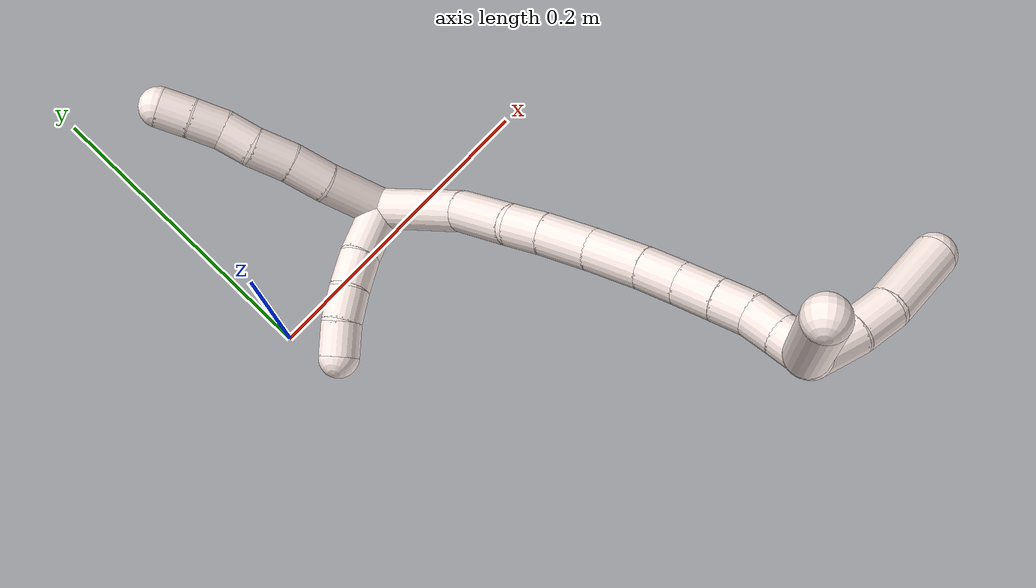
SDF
<sdf version="1.7">
 <world name="default">
  <model name="11">
   <static>0</static>
   <link name="11">
    <collision name="collision-cylinder-e_1_2_8">
     <pose>-0.012832 0.015035 -0.001807 -1.69042 -0.702957 0.784048</pose>
     <geometry><cylinder><radius>0.0125</radius><length>0.039697</length></cylinder></geometry>
     <surface>
      <friction><ode><mu>1.16</mu><mu2>1.16</mu2><slip1>0</slip1><slip2>0</slip2></ode></friction>
      <contact><ode><kp>1e+06</kp><kd>1</kd><max_vel>0</max_vel><min_depth>0.001</min_depth></ode></contact>
     </surface>
    </collision>
    <visual name="visual-cylinder-e_1_2_8">
     <pose>-0.012832 0.015035 -0.001807 -1.69042 -0.702957 0.784048</pose>
     <geometry><cylinder><radius>0.0125</radius><length>0.039697</length></cylinder></geometry>
     <material><ambient>1 0.933333 0.909804 1</ambient></material>
    </visual>
    <collision name="collision-cylinder-e_2_8_9">
     <pose>-0.033209 0.040159 -0.003084 -1.51824 -0.641499 0.610696</pose>
     <geometry><cylinder><radius>0.0125</radius><length>0.025219</length></cylinder></geometry>
     <surface>
      <friction><ode><mu>1.16</mu><mu2>1.16</mu2><slip1>0</slip1><slip2>0</slip2></ode></friction>
      <contact><ode><kp>1e+06</kp><kd>1</kd><max_vel>0</max_vel><min_depth>0.001</min_depth></ode></contact>
     </surface>
    </collision>
    <visual name="visual-cylinder-e_2_8_9">
     <pose>-0.033209 0.040159 -0.003084 -1.51824 -0.641499 0.610696</pose>
     <geometry><cylinder><radius>0.0125</radius><length>0.025219</length></cylinder></geometry>
     <material><ambient>1 0.933333 0.909804 1</ambient></material>
    </visual>
    <collision name="collision-cylinder-e_3_9_10">
     <pose>-0.047345 0.06071 -0.002858 -1.59996 -0.561989 0.577723</pose>
     <geometry><cylinder><radius>0.0125</radius><length>0.024738</length></cylinder></geometry>
     <surface>
      <friction><ode><mu>1.16</mu><mu2>1.16</mu2><slip1>0</slip1><slip2>0</slip2></ode></friction>
      <contact><ode><kp>1e+06</kp><kd>1</kd><max_vel>0</max_vel><min_depth>0.001</min_depth></ode></contact>
     </surface>
    </collision>
    <visual name="visual-cylinder-e_3_9_10">
     <pose>-0.047345 0.06071 -0.002858 -1.59996 -0.561989 0.577723</pose>
     <geometry><cylinder><radius>0.0125</radius><length>0.024738</length></cylinder></geometry>
     <material><ambient>1 0.933333 0.909804 1</ambient></material>
    </visual>
    <collision name="collision-cylinder-e_4_10_11">
     <pose>-0.058693 0.079893 -0.001532 -1.38589 -0.492124 0.411168</pose>
     <geometry><cylinder><radius>0.0125</radius><length>0.020134</length></cylinder></geometry>
     <surface>
      <friction><ode><mu>1.16</mu><mu2>1.16</mu2><slip1>0</slip1><slip2>0</slip2></ode></friction>
      <contact><ode><kp>1e+06</kp><kd>1</kd><max_vel>0</max_vel><min_depth>0.001</min_depth></ode></contact>
     </surface>
    </collision>
    <visual name="visual-cylinder-e_4_10_11">
     <pose>-0.058693 0.079893 -0.001532 -1.38589 -0.492124 0.411168</pose>
     <geometry><cylinder><radius>0.0125</radius><length>0.020134</length></cylinder></geometry>
     <material><ambient>1 0.933333 0.909804 1</ambient></material>
    </visual>
    <collision name="collision-cylinder-e_5_11_12">
     <pose>-0.068124 0.097561 -0.000158 -1.59956 -0.481301 0.494788</pose>
     <geometry><cylinder><radius>0.0125</radius><length>0.020196</length></cylinder></geometry>
     <surface>
      <friction><ode><mu>1.16</mu><mu2>1.16</mu2><slip1>0</slip1><slip2>0</slip2></ode></friction>
      <contact><ode><kp>1e+06</kp><kd>1</kd><max_vel>0</max_vel><min_depth>0.001</min_depth></ode></contact>
     </surface>
    </collision>
    <visual name="visual-cylinder-e_5_11_12">
     <pose>-0.068124 0.097561 -0.000158 -1.59956 -0.481301 0.494788</pose>
     <geometry><cylinder><radius>0.0125</radius><length>0.020196</length></cylinder></geometry>
     <material><ambient>1 0.933333 0.909804 1</ambient></material>
    </visual>
    <collision name="collision-cylinder-e_6_12_6">
     <pose>-0.076703 0.115723 -0.00033 -1.56154 -0.400708 0.397111</pose>
     <geometry><cylinder><radius>0.0125</radius><length>0.020016</length></cylinder></geometry>
     <surface>
      <friction><ode><mu>1.16</mu><mu2>1.16</mu2><slip1>0</slip1><slip2>0</slip2></ode></friction>
      <contact><ode><kp>1e+06</kp><kd>1</kd><max_vel>0</max_vel><min_depth>0.001</min_depth></ode></contact>
     </surface>
    </collision>
    <visual name="visual-cylinder-e_6_12_6">
     <pose>-0.076703 0.115723 -0.00033 -1.56154 -0.400708 0.397111</pose>
     <geometry><cylinder><radius>0.0125</radius><length>0.020016</length></cylinder></geometry>
     <material><ambient>1 0.933333 0.909804 1</ambient></material>
    </visual>
    <collision name="collision-cylinder-e_1_2_13">
     <pose>0.002186 0.003134 -0.017584 -2.96522 0.121766 -1.20724</pose>
     <geometry><cylinder><radius>0.0125</radius><length>0.035988</length></cylinder></geometry>
     <surface>
      <friction><ode><mu>1.16</mu><mu2>1.16</mu2><slip1>0</slip1><slip2>0</slip2></ode></friction>
      <contact><ode><kp>1e+06</kp><kd>1</kd><max_vel>0</max_vel><min_depth>0.001</min_depth></ode></contact>
     </surface>
    </collision>
    <visual name="visual-cylinder-e_1_2_13">
     <pose>0.002186 0.003134 -0.017584 -2.96522 0.121766 -1.20724</pose>
     <geometry><cylinder><radius>0.0125</radius><length>0.035988</length></cylinder></geometry>
     <material><ambient>1 0.933333 0.909804 1</ambient></material>
    </visual>
    <collision name="collision-cylinder-e_2_13_14">
     <pose>0.006891 0.007346 -0.045924 -3.04168 0.228981 -2.3213</pose>
     <geometry><cylinder><radius>0.0125</radius><length>0.0222</length></cylinder></geometry>
     <surface>
      <friction><ode><mu>1.16</mu><mu2>1.16</mu2><slip1>0</slip1><slip2>0</slip2></ode></friction>
      <contact><ode><kp>1e+06</kp><kd>1</kd><max_vel>0</max_vel><min_depth>0.001</min_depth></ode></contact>
     </surface>
    </collision>
    <visual name="visual-cylinder-e_2_13_14">
     <pose>0.006891 0.007346 -0.045924 -3.04168 0.228981 -2.3213</pose>
     <geometry><cylinder><radius>0.0125</radius><length>0.0222</length></cylinder></geometry>
     <material><ambient>1 0.933333 0.909804 1</ambient></material>
    </visual>
    <collision name="collision-cylinder-e_3_14_15">
     <pose>0.013354 0.009196 -0.066172 -3.06042 0.392601 -2.73874</pose>
     <geometry><cylinder><radius>0.0125</radius><length>0.020616</length></cylinder></geometry>
     <surface>
      <friction><ode><mu>1.16</mu><mu2>1.16</mu2><slip1>0</slip1><slip2>0</slip2></ode></friction>
      <contact><ode><kp>1e+06</kp><kd>1</kd><max_vel>0</max_vel><min_depth>0.001</min_depth></ode></contact>
     </surface>
    </collision>
    <visual name="visual-cylinder-e_3_14_15">
     <pose>0.013354 0.009196 -0.066172 -3.06042 0.392601 -2.73874</pose>
     <geometry><cylinder><radius>0.0125</radius><length>0.020616</length></cylinder></geometry>
     <material><ambient>1 0.933333 0.909804 1</ambient></material>
    </visual>
    <collision name="collision-cylinder-e_4_15_5">
     <pose>0.022733 0.009558 -0.084754 3.09651 0.538449 2.97854</pose>
     <geometry><cylinder><radius>0.0125</radius><length>0.021197</length></cylinder></geometry>
     <surface>
      <friction><ode><mu>1.16</mu><mu2>1.16</mu2><slip1>0</slip1><slip2>0</slip2></ode></friction>
      <contact><ode><kp>1e+06</kp><kd>1</kd><max_vel>0</max_vel><min_depth>0.001</min_depth></ode></contact>
     </surface>
    </collision>
    <visual name="visual-cylinder-e_4_15_5">
     <pose>0.022733 0.009558 -0.084754 3.09651 0.538449 2.97854</pose>
     <geometry><cylinder><radius>0.0125</radius><length>0.021197</length></cylinder></geometry>
     <material><ambient>1 0.933333 0.909804 1</ambient></material>
    </visual>
    <collision name="collision-cylinder-e_1_2_16">
     <pose>-0.011816 -0.028657 -0.007797 1.83646 -0.378649 -0.49132</pose>
     <geometry><cylinder><radius>0.0125</radius><length>0.063927</length></cylinder></geometry>
     <surface>
      <friction><ode><mu>1.16</mu><mu2>1.16</mu2><slip1>0</slip1><slip2>0</slip2></ode></friction>
      <contact><ode><kp>1e+06</kp><kd>1</kd><max_vel>0</max_vel><min_depth>0.001</min_depth></ode></contact>
     </surface>
    </collision>
    <visual name="visual-cylinder-e_1_2_16">
     <pose>-0.011816 -0.028657 -0.007797 1.83646 -0.378649 -0.49132</pose>
     <geometry><cylinder><radius>0.0125</radius><length>0.063927</length></cylinder></geometry>
     <material><ambient>1 0.933333 0.909804 1</ambient></material>
    </visual>
    <collision name="collision-cylinder-e_2_16_17">
     <pose>-0.030997 -0.074342 -0.024914 2.07159 -0.362655 -0.600033</pose>
     <geometry><cylinder><radius>0.0125</radius><length>0.041522</length></cylinder></geometry>
     <surface>
      <friction><ode><mu>1.16</mu><mu2>1.16</mu2><slip1>0</slip1><slip2>0</slip2></ode></friction>
      <contact><ode><kp>1e+06</kp><kd>1</kd><max_vel>0</max_vel><min_depth>0.001</min_depth></ode></contact>
     </surface>
    </collision>
    <visual name="visual-cylinder-e_2_16_17">
     <pose>-0.030997 -0.074342 -0.024914 2.07159 -0.362655 -0.600033</pose>
     <geometry><cylinder><radius>0.0125</radius><length>0.041522</length></cylinder></geometry>
     <material><ambient>1 0.933333 0.909804 1</ambient></material>
    </visual>
    <collision name="collision-cylinder-e_3_17_18">
     <pose>-0.039783 -0.10202 -0.037636 1.87996 -0.126409 -0.172875</pose>
     <geometry><cylinder><radius>0.0125</radius><length>0.022542</length></cylinder></geometry>
     <surface>
      <friction><ode><mu>1.16</mu><mu2>1.16</mu2><slip1>0</slip1><slip2>0</slip2></ode></friction>
      <contact><ode><kp>1e+06</kp><kd>1</kd><max_vel>0</max_vel><min_depth>0.001</min_depth></ode></contact>
     </surface>
    </collision>
    <visual name="visual-cylinder-e_3_17_18">
     <pose>-0.039783 -0.10202 -0.037636 1.87996 -0.126409 -0.172875</pose>
     <geometry><cylinder><radius>0.0125</radius><length>0.022542</length></cylinder></geometry>
     <material><ambient>1 0.933333 0.909804 1</ambient></material>
    </visual>
    <collision name="collision-cylinder-e_4_18_19">
     <pose>-0.042778 -0.12717 -0.046254 1.91614 -0.101842 -0.144742</pose>
     <geometry><cylinder><radius>0.0125</radius><length>0.030978</length></cylinder></geometry>
     <surface>
      <friction><ode><mu>1.16</mu><mu2>1.16</mu2><slip1>0</slip1><slip2>0</slip2></ode></friction>
      <contact><ode><kp>1e+06</kp><kd>1</kd><max_vel>0</max_vel><min_depth>0.001</min_depth></ode></contact>
     </surface>
    </collision>
    <visual name="visual-cylinder-e_4_18_19">
     <pose>-0.042778 -0.12717 -0.046254 1.91614 -0.101842 -0.144742</pose>
     <geometry><cylinder><radius>0.0125</radius><length>0.030978</length></cylinder></geometry>
     <material><ambient>1 0.933333 0.909804 1</ambient></material>
    </visual>
    <collision name="collision-cylinder-e_5_19_20">
     <pose>-0.046457 -0.157116 -0.057946 1.96778 -0.12496 -0.187579</pose>
     <geometry><cylinder><radius>0.0125</radius><length>0.033763</length></cylinder></geometry>
     <surface>
      <friction><ode><mu>1.16</mu><mu2>1.16</mu2><slip1>0</slip1><slip2>0</slip2></ode></friction>
      <contact><ode><kp>1e+06</kp><kd>1</kd><max_vel>0</max_vel><min_depth>0.001</min_depth></ode></contact>
     </surface>
    </collision>
    <visual name="visual-cylinder-e_5_19_20">
     <pose>-0.046457 -0.157116 -0.057946 1.96778 -0.12496 -0.187579</pose>
     <geometry><cylinder><radius>0.0125</radius><length>0.033763</length></cylinder></geometry>
     <material><ambient>1 0.933333 0.909804 1</ambient></material>
    </visual>
    <collision name="collision-cylinder-e_6_20_21">
     <pose>-0.049659 -0.183236 -0.069339 2.00252 -0.093129 -0.145292</pose>
     <geometry><cylinder><radius>0.0125</radius><length>0.023603</length></cylinder></geometry>
     <surface>
      <friction><ode><mu>1.16</mu><mu2>1.16</mu2><slip1>0</slip1><slip2>0</slip2></ode></friction>
      <contact><ode><kp>1e+06</kp><kd>1</kd><max_vel>0</max_vel><min_depth>0.001</min_depth></ode></contact>
     </surface>
    </collision>
    <visual name="visual-cylinder-e_6_20_21">
     <pose>-0.049659 -0.183236 -0.069339 2.00252 -0.093129 -0.145292</pose>
     <geometry><cylinder><radius>0.0125</radius><length>0.023603</length></cylinder></geometry>
     <material><ambient>1 0.933333 0.909804 1</ambient></material>
    </visual>
    <collision name="collision-cylinder-e_7_21_22">
     <pose>-0.051887 -0.204363 -0.079286 2.01921 -0.097153 -0.154367</pose>
     <geometry><cylinder><radius>0.0125</radius><length>0.023313</length></cylinder></geometry>
     <surface>
      <friction><ode><mu>1.16</mu><mu2>1.16</mu2><slip1>0</slip1><slip2>0</slip2></ode></friction>
      <contact><ode><kp>1e+06</kp><kd>1</kd><max_vel>0</max_vel><min_depth>0.001</min_depth></ode></contact>
     </surface>
    </collision>
    <visual name="visual-cylinder-e_7_21_22">
     <pose>-0.051887 -0.204363 -0.079286 2.01921 -0.097153 -0.154367</pose>
     <geometry><cylinder><radius>0.0125</radius><length>0.023313</length></cylinder></geometry>
     <material><ambient>1 0.933333 0.909804 1</ambient></material>
    </visual>
    <collision name="collision-cylinder-e_8_22_23">
     <pose>-0.053729 -0.223937 -0.088554 2.00584 -0.070625 -0.110634</pose>
     <geometry><cylinder><radius>0.0125</radius><length>0.020163</length></cylinder></geometry>
     <surface>
      <friction><ode><mu>1.16</mu><mu2>1.16</mu2><slip1>0</slip1><slip2>0</slip2></ode></friction>
      <contact><ode><kp>1e+06</kp><kd>1</kd><max_vel>0</max_vel><min_depth>0.001</min_depth></ode></contact>
     </surface>
    </collision>
    <visual name="visual-cylinder-e_8_22_23">
     <pose>-0.053729 -0.223937 -0.088554 2.00584 -0.070625 -0.110634</pose>
     <geometry><cylinder><radius>0.0125</radius><length>0.020163</length></cylinder></geometry>
     <material><ambient>1 0.933333 0.909804 1</ambient></material>
    </visual>
    <collision name="collision-cylinder-e_9_23_24">
     <pose>-0.055125 -0.240992 -0.098895 2.22644 -0.068241 -0.138412</pose>
     <geometry><cylinder><radius>0.0125</radius><length>0.020069</length></cylinder></geometry>
     <surface>
      <friction><ode><mu>1.16</mu><mu2>1.16</mu2><slip1>0</slip1><slip2>0</slip2></ode></friction>
      <contact><ode><kp>1e+06</kp><kd>1</kd><max_vel>0</max_vel><min_depth>0.001</min_depth></ode></contact>
     </surface>
    </collision>
    <visual name="visual-cylinder-e_9_23_24">
     <pose>-0.055125 -0.240992 -0.098895 2.22644 -0.068241 -0.138412</pose>
     <geometry><cylinder><radius>0.0125</radius><length>0.020069</length></cylinder></geometry>
     <material><ambient>1 0.933333 0.909804 1</ambient></material>
    </visual>
    <collision name="collision-cylinder-e_10_24_1">
     <pose>-0.056665 -0.256737 -0.111282 2.24828 -0.085239 -0.177616</pose>
     <geometry><cylinder><radius>0.0125</radius><length>0.020119</length></cylinder></geometry>
     <surface>
      <friction><ode><mu>1.16</mu><mu2>1.16</mu2><slip1>0</slip1><slip2>0</slip2></ode></friction>
      <contact><ode><kp>1e+06</kp><kd>1</kd><max_vel>0</max_vel><min_depth>0.001</min_depth></ode></contact>
     </surface>
    </collision>
    <visual name="visual-cylinder-e_10_24_1">
     <pose>-0.056665 -0.256737 -0.111282 2.24828 -0.085239 -0.177616</pose>
     <geometry><cylinder><radius>0.0125</radius><length>0.020119</length></cylinder></geometry>
     <material><ambient>1 0.933333 0.909804 1</ambient></material>
    </visual>
    <collision name="collision-cylinder-e_1_1_25">
     <pose>-0.067453 -0.263652 -0.123882 -3.00082 -0.999782 2.88483</pose>
     <geometry><cylinder><radius>0.0125</radius><length>0.023608</length></cylinder></geometry>
     <surface>
      <friction><ode><mu>1.16</mu><mu2>1.16</mu2><slip1>0</slip1><slip2>0</slip2></ode></friction>
      <contact><ode><kp>1e+06</kp><kd>1</kd><max_vel>0</max_vel><min_depth>0.001</min_depth></ode></contact>
     </surface>
    </collision>
    <visual name="visual-cylinder-e_1_1_25">
     <pose>-0.067453 -0.263652 -0.123882 -3.00082 -0.999782 2.88483</pose>
     <geometry><cylinder><radius>0.0125</radius><length>0.023608</length></cylinder></geometry>
     <material><ambient>1 0.933333 0.909804 1</ambient></material>
    </visual>
    <collision name="collision-cylinder-e_2_25_4">
     <pose>-0.11286 -0.265999 -0.143978 2.9105 -1.19112 -2.80233</pose>
     <geometry><cylinder><radius>0.0125</radius><length>0.076392</length></cylinder></geometry>
     <surface>
      <friction><ode><mu>1.16</mu><mu2>1.16</mu2><slip1>0</slip1><slip2>0</slip2></ode></friction>
      <contact><ode><kp>1e+06</kp><kd>1</kd><max_vel>0</max_vel><min_depth>0.001</min_depth></ode></contact>
     </surface>
    </collision>
    <visual name="visual-cylinder-e_2_25_4">
     <pose>-0.11286 -0.265999 -0.143978 2.9105 -1.19112 -2.80233</pose>
     <geometry><cylinder><radius>0.0125</radius><length>0.076392</length></cylinder></geometry>
     <material><ambient>1 0.933333 0.909804 1</ambient></material>
    </visual>
    <collision name="collision-cylinder-e_1_1_26">
     <pose>-0.05698 -0.275371 -0.10829 0.862335 0.038002 0.017484</pose>
     <geometry><cylinder><radius>0.0125</radius><length>0.02853</length></cylinder></geometry>
     <surface>
      <friction><ode><mu>1.16</mu><mu2>1.16</mu2><slip1>0</slip1><slip2>0</slip2></ode></friction>
      <contact><ode><kp>1e+06</kp><kd>1</kd><max_vel>0</max_vel><min_depth>0.001</min_depth></ode></contact>
     </surface>
    </collision>
    <visual name="visual-cylinder-e_1_1_26">
     <pose>-0.05698 -0.275371 -0.10829 0.862335 0.038002 0.017484</pose>
     <geometry><cylinder><radius>0.0125</radius><length>0.02853</length></cylinder></geometry>
     <material><ambient>1 0.933333 0.909804 1</ambient></material>
    </visual>
    <collision name="collision-cylinder-e_2_26_27">
     <pose>-0.055985 -0.293992 -0.090119 0.719626 0.038258 0.014394</pose>
     <geometry><cylinder><radius>0.0125</radius><length>0.023675</length></cylinder></geometry>
     <surface>
      <friction><ode><mu>1.16</mu><mu2>1.16</mu2><slip1>0</slip1><slip2>0</slip2></ode></friction>
      <contact><ode><kp>1e+06</kp><kd>1</kd><max_vel>0</max_vel><min_depth>0.001</min_depth></ode></contact>
     </surface>
    </collision>
    <visual name="visual-cylinder-e_2_26_27">
     <pose>-0.055985 -0.293992 -0.090119 0.719626 0.038258 0.014394</pose>
     <geometry><cylinder><radius>0.0125</radius><length>0.023675</length></cylinder></geometry>
     <material><ambient>1 0.933333 0.909804 1</ambient></material>
    </visual>
    <collision name="collision-cylinder-e_3_27_3">
     <pose>-0.052601 -0.313249 -0.060459 0.504344 0.122959 0.031719</pose>
     <geometry><cylinder><radius>0.0125</radius><length>0.047795</length></cylinder></geometry>
     <surface>
      <friction><ode><mu>1.16</mu><mu2>1.16</mu2><slip1>0</slip1><slip2>0</slip2></ode></friction>
      <contact><ode><kp>1e+06</kp><kd>1</kd><max_vel>0</max_vel><min_depth>0.001</min_depth></ode></contact>
     </surface>
    </collision>
    <visual name="visual-cylinder-e_3_27_3">
     <pose>-0.052601 -0.313249 -0.060459 0.504344 0.122959 0.031719</pose>
     <geometry><cylinder><radius>0.0125</radius><length>0.047795</length></cylinder></geometry>
     <material><ambient>1 0.933333 0.909804 1</ambient></material>
    </visual>
    <collision name="collision-sphere-3">
     <pose>-0.04967 -0.32471 -0.039695 0 -0 0</pose>
     <geometry><sphere><radius>0.0125</radius></sphere></geometry>
     <surface>
      <friction><ode><mu>1.16</mu><mu2>1.16</mu2><slip1>0</slip1><slip2>0</slip2></ode></friction>
      <contact><ode><kp>1e+06</kp><kd>1</kd><max_vel>0</max_vel><min_depth>0.001</min_depth></ode></contact>
     </surface>
    </collision>
    <visual name="visual-sphere-3">
     <pose>-0.04967 -0.32471 -0.039695 0 -0 0</pose>
     <geometry><sphere><radius>0.0125</radius></sphere></geometry>
     <material><ambient>1 0.933333 0.909804 1</ambient></material>
    </visual>
    <collision name="collision-sphere-27">
     <pose>-0.055532 -0.301789 -0.081223 0 -0 0</pose>
     <geometry><sphere><radius>0.0125</radius></sphere></geometry>
     <surface>
      <friction><ode><mu>1.16</mu><mu2>1.16</mu2><slip1>0</slip1><slip2>0</slip2></ode></friction>
      <contact><ode><kp>1e+06</kp><kd>1</kd><max_vel>0</max_vel><min_depth>0.001</min_depth></ode></contact>
     </surface>
    </collision>
    <visual name="visual-sphere-27">
     <pose>-0.055532 -0.301789 -0.081223 0 -0 0</pose>
     <geometry><sphere><radius>0.0125</radius></sphere></geometry>
     <material><ambient>1 0.933333 0.909804 1</ambient></material>
    </visual>
    <collision name="collision-sphere-26">
     <pose>-0.056438 -0.286195 -0.099015 0 -0 0</pose>
     <geometry><sphere><radius>0.0125</radius></sphere></geometry>
     <surface>
      <friction><ode><mu>1.16</mu><mu2>1.16</mu2><slip1>0</slip1><slip2>0</slip2></ode></friction>
      <contact><ode><kp>1e+06</kp><kd>1</kd><max_vel>0</max_vel><min_depth>0.001</min_depth></ode></contact>
     </surface>
    </collision>
    <visual name="visual-sphere-26">
     <pose>-0.056438 -0.286195 -0.099015 0 -0 0</pose>
     <geometry><sphere><radius>0.0125</radius></sphere></geometry>
     <material><ambient>1 0.933333 0.909804 1</ambient></material>
    </visual>
    <collision name="collision-sphere-4">
     <pose>-0.148336 -0.269241 -0.157758 0 -0 0</pose>
     <geometry><sphere><radius>0.0125</radius></sphere></geometry>
     <surface>
      <friction><ode><mu>1.16</mu><mu2>1.16</mu2><slip1>0</slip1><slip2>0</slip2></ode></friction>
      <contact><ode><kp>1e+06</kp><kd>1</kd><max_vel>0</max_vel><min_depth>0.001</min_depth></ode></contact>
     </surface>
    </collision>
    <visual name="visual-sphere-4">
     <pose>-0.148336 -0.269241 -0.157758 0 -0 0</pose>
     <geometry><sphere><radius>0.0125</radius></sphere></geometry>
     <material><ambient>1 0.933333 0.909804 1</ambient></material>
    </visual>
    <collision name="collision-sphere-25">
     <pose>-0.077384 -0.262757 -0.130198 0 -0 0</pose>
     <geometry><sphere><radius>0.0125</radius></sphere></geometry>
     <surface>
      <friction><ode><mu>1.16</mu><mu2>1.16</mu2><slip1>0</slip1><slip2>0</slip2></ode></friction>
      <contact><ode><kp>1e+06</kp><kd>1</kd><max_vel>0</max_vel><min_depth>0.001</min_depth></ode></contact>
     </surface>
    </collision>
    <visual name="visual-sphere-25">
     <pose>-0.077384 -0.262757 -0.130198 0 -0 0</pose>
     <geometry><sphere><radius>0.0125</radius></sphere></geometry>
     <material><ambient>1 0.933333 0.909804 1</ambient></material>
    </visual>
    <collision name="collision-sphere-1">
     <pose>-0.057522 -0.264547 -0.117565 0 -0 0</pose>
     <geometry><sphere><radius>0.0125</radius></sphere></geometry>
     <surface>
      <friction><ode><mu>1.16</mu><mu2>1.16</mu2><slip1>0</slip1><slip2>0</slip2></ode></friction>
      <contact><ode><kp>1e+06</kp><kd>1</kd><max_vel>0</max_vel><min_depth>0.001</min_depth></ode></contact>
     </surface>
    </collision>
    <visual name="visual-sphere-1">
     <pose>-0.057522 -0.264547 -0.117565 0 -0 0</pose>
     <geometry><sphere><radius>0.0125</radius></sphere></geometry>
     <material><ambient>1 0.933333 0.909804 1</ambient></material>
    </visual>
    <collision name="collision-sphere-24">
     <pose>-0.055809 -0.248928 -0.104999 0 -0 0</pose>
     <geometry><sphere><radius>0.0125</radius></sphere></geometry>
     <surface>
      <friction><ode><mu>1.16</mu><mu2>1.16</mu2><slip1>0</slip1><slip2>0</slip2></ode></friction>
      <contact><ode><kp>1e+06</kp><kd>1</kd><max_vel>0</max_vel><min_depth>0.001</min_depth></ode></contact>
     </surface>
    </collision>
    <visual name="visual-sphere-24">
     <pose>-0.055809 -0.248928 -0.104999 0 -0 0</pose>
     <geometry><sphere><radius>0.0125</radius></sphere></geometry>
     <material><ambient>1 0.933333 0.909804 1</ambient></material>
    </visual>
    <collision name="collision-sphere-23">
     <pose>-0.05444 -0.233057 -0.092792 0 -0 0</pose>
     <geometry><sphere><radius>0.0125</radius></sphere></geometry>
     <surface>
      <friction><ode><mu>1.16</mu><mu2>1.16</mu2><slip1>0</slip1><slip2>0</slip2></ode></friction>
      <contact><ode><kp>1e+06</kp><kd>1</kd><max_vel>0</max_vel><min_depth>0.001</min_depth></ode></contact>
     </surface>
    </collision>
    <visual name="visual-sphere-23">
     <pose>-0.05444 -0.233057 -0.092792 0 -0 0</pose>
     <geometry><sphere><radius>0.0125</radius></sphere></geometry>
     <material><ambient>1 0.933333 0.909804 1</ambient></material>
    </visual>
    <collision name="collision-sphere-22">
     <pose>-0.053018 -0.214817 -0.084315 0 -0 0</pose>
     <geometry><sphere><radius>0.0125</radius></sphere></geometry>
     <surface>
      <friction><ode><mu>1.16</mu><mu2>1.16</mu2><slip1>0</slip1><slip2>0</slip2></ode></friction>
      <contact><ode><kp>1e+06</kp><kd>1</kd><max_vel>0</max_vel><min_depth>0.001</min_depth></ode></contact>
     </surface>
    </collision>
    <visual name="visual-sphere-22">
     <pose>-0.053018 -0.214817 -0.084315 0 -0 0</pose>
     <geometry><sphere><radius>0.0125</radius></sphere></geometry>
     <material><ambient>1 0.933333 0.909804 1</ambient></material>
    </visual>
    <collision name="collision-sphere-21">
     <pose>-0.050756 -0.193908 -0.074256 0 -0 0</pose>
     <geometry><sphere><radius>0.0125</radius></sphere></geometry>
     <surface>
      <friction><ode><mu>1.16</mu><mu2>1.16</mu2><slip1>0</slip1><slip2>0</slip2></ode></friction>
      <contact><ode><kp>1e+06</kp><kd>1</kd><max_vel>0</max_vel><min_depth>0.001</min_depth></ode></contact>
     </surface>
    </collision>
    <visual name="visual-sphere-21">
     <pose>-0.050756 -0.193908 -0.074256 0 -0 0</pose>
     <geometry><sphere><radius>0.0125</radius></sphere></geometry>
     <material><ambient>1 0.933333 0.909804 1</ambient></material>
    </visual>
    <collision name="collision-sphere-12">
     <pose>-0.072799 0.106508 -0.000416 0 -0 0</pose>
     <geometry><sphere><radius>0.0125</radius></sphere></geometry>
     <surface>
      <friction><ode><mu>1.16</mu><mu2>1.16</mu2><slip1>0</slip1><slip2>0</slip2></ode></friction>
      <contact><ode><kp>1e+06</kp><kd>1</kd><max_vel>0</max_vel><min_depth>0.001</min_depth></ode></contact>
     </surface>
    </collision>
    <visual name="visual-sphere-12">
     <pose>-0.072799 0.106508 -0.000416 0 -0 0</pose>
     <geometry><sphere><radius>0.0125</radius></sphere></geometry>
     <material><ambient>1 0.933333 0.909804 1</ambient></material>
    </visual>
    <collision name="collision-sphere-11">
     <pose>-0.06345 0.088614 9.9e-05 0 -0 0</pose>
     <geometry><sphere><radius>0.0125</radius></sphere></geometry>
     <surface>
      <friction><ode><mu>1.16</mu><mu2>1.16</mu2><slip1>0</slip1><slip2>0</slip2></ode></friction>
      <contact><ode><kp>1e+06</kp><kd>1</kd><max_vel>0</max_vel><min_depth>0.001</min_depth></ode></contact>
     </surface>
    </collision>
    <visual name="visual-sphere-11">
     <pose>-0.06345 0.088614 9.9e-05 0 -0 0</pose>
     <geometry><sphere><radius>0.0125</radius></sphere></geometry>
     <material><ambient>1 0.933333 0.909804 1</ambient></material>
    </visual>
    <collision name="collision-sphere-10">
     <pose>-0.053936 0.071172 -0.003163 0 -0 0</pose>
     <geometry><sphere><radius>0.0125</radius></sphere></geometry>
     <surface>
      <friction><ode><mu>1.16</mu><mu2>1.16</mu2><slip1>0</slip1><slip2>0</slip2></ode></friction>
      <contact><ode><kp>1e+06</kp><kd>1</kd><max_vel>0</max_vel><min_depth>0.001</min_depth></ode></contact>
     </surface>
    </collision>
    <visual name="visual-sphere-10">
     <pose>-0.053936 0.071172 -0.003163 0 -0 0</pose>
     <geometry><sphere><radius>0.0125</radius></sphere></geometry>
     <material><ambient>1 0.933333 0.909804 1</ambient></material>
    </visual>
    <collision name="collision-sphere-9">
     <pose>-0.040754 0.050247 -0.002553 0 -0 0</pose>
     <geometry><sphere><radius>0.0125</radius></sphere></geometry>
     <surface>
      <friction><ode><mu>1.16</mu><mu2>1.16</mu2><slip1>0</slip1><slip2>0</slip2></ode></friction>
      <contact><ode><kp>1e+06</kp><kd>1</kd><max_vel>0</max_vel><min_depth>0.001</min_depth></ode></contact>
     </surface>
    </collision>
    <visual name="visual-sphere-9">
     <pose>-0.040754 0.050247 -0.002553 0 -0 0</pose>
     <geometry><sphere><radius>0.0125</radius></sphere></geometry>
     <material><ambient>1 0.933333 0.909804 1</ambient></material>
    </visual>
    <collision name="collision-sphere-2">
     <geometry><sphere><radius>0.0125</radius></sphere></geometry>
     <surface>
      <friction><ode><mu>1.16</mu><mu2>1.16</mu2><slip1>0</slip1><slip2>0</slip2></ode></friction>
      <contact><ode><kp>1e+06</kp><kd>1</kd><max_vel>0</max_vel><min_depth>0.001</min_depth></ode></contact>
     </surface>
    </collision>
    <visual name="visual-sphere-2">
     <geometry><sphere><radius>0.0125</radius></sphere></geometry>
     <material><ambient>1 0.933333 0.909804 1</ambient></material>
    </visual>
    <collision name="collision-sphere-19">
     <pose>-0.044353 -0.141669 -0.05147 0 -0 0</pose>
     <geometry><sphere><radius>0.0125</radius></sphere></geometry>
     <surface>
      <friction><ode><mu>1.16</mu><mu2>1.16</mu2><slip1>0</slip1><slip2>0</slip2></ode></friction>
      <contact><ode><kp>1e+06</kp><kd>1</kd><max_vel>0</max_vel><min_depth>0.001</min_depth></ode></contact>
     </surface>
    </collision>
    <visual name="visual-sphere-19">
     <pose>-0.044353 -0.141669 -0.05147 0 -0 0</pose>
     <geometry><sphere><radius>0.0125</radius></sphere></geometry>
     <material><ambient>1 0.933333 0.909804 1</ambient></material>
    </visual>
    <collision name="collision-sphere-8">
     <pose>-0.025663 0.03007 -0.003614 0 -0 0</pose>
     <geometry><sphere><radius>0.0125</radius></sphere></geometry>
     <surface>
      <friction><ode><mu>1.16</mu><mu2>1.16</mu2><slip1>0</slip1><slip2>0</slip2></ode></friction>
      <contact><ode><kp>1e+06</kp><kd>1</kd><max_vel>0</max_vel><min_depth>0.001</min_depth></ode></contact>
     </surface>
    </collision>
    <visual name="visual-sphere-8">
     <pose>-0.025663 0.03007 -0.003614 0 -0 0</pose>
     <geometry><sphere><radius>0.0125</radius></sphere></geometry>
     <material><ambient>1 0.933333 0.909804 1</ambient></material>
    </visual>
    <collision name="collision-sphere-6">
     <pose>-0.080607 0.124938 -0.000245 0 -0 0</pose>
     <geometry><sphere><radius>0.0125</radius></sphere></geometry>
     <surface>
      <friction><ode><mu>1.16</mu><mu2>1.16</mu2><slip1>0</slip1><slip2>0</slip2></ode></friction>
      <contact><ode><kp>1e+06</kp><kd>1</kd><max_vel>0</max_vel><min_depth>0.001</min_depth></ode></contact>
     </surface>
    </collision>
    <visual name="visual-sphere-6">
     <pose>-0.080607 0.124938 -0.000245 0 -0 0</pose>
     <geometry><sphere><radius>0.0125</radius></sphere></geometry>
     <material><ambient>1 0.933333 0.909804 1</ambient></material>
    </visual>
    <collision name="collision-sphere-13">
     <pose>0.004371 0.006268 -0.035167 0 -0 0</pose>
     <geometry><sphere><radius>0.0125</radius></sphere></geometry>
     <surface>
      <friction><ode><mu>1.16</mu><mu2>1.16</mu2><slip1>0</slip1><slip2>0</slip2></ode></friction>
      <contact><ode><kp>1e+06</kp><kd>1</kd><max_vel>0</max_vel><min_depth>0.001</min_depth></ode></contact>
     </surface>
    </collision>
    <visual name="visual-sphere-13">
     <pose>0.004371 0.006268 -0.035167 0 -0 0</pose>
     <geometry><sphere><radius>0.0125</radius></sphere></geometry>
     <material><ambient>1 0.933333 0.909804 1</ambient></material>
    </visual>
    <collision name="collision-sphere-14">
     <pose>0.00941 0.008424 -0.05668 0 -0 0</pose>
     <geometry><sphere><radius>0.0125</radius></sphere></geometry>
     <surface>
      <friction><ode><mu>1.16</mu><mu2>1.16</mu2><slip1>0</slip1><slip2>0</slip2></ode></friction>
      <contact><ode><kp>1e+06</kp><kd>1</kd><max_vel>0</max_vel><min_depth>0.001</min_depth></ode></contact>
     </surface>
    </collision>
    <visual name="visual-sphere-14">
     <pose>0.00941 0.008424 -0.05668 0 -0 0</pose>
     <geometry><sphere><radius>0.0125</radius></sphere></geometry>
     <material><ambient>1 0.933333 0.909804 1</ambient></material>
    </visual>
    <collision name="collision-sphere-15">
     <pose>0.017298 0.009968 -0.075664 0 -0 0</pose>
     <geometry><sphere><radius>0.0125</radius></sphere></geometry>
     <surface>
      <friction><ode><mu>1.16</mu><mu2>1.16</mu2><slip1>0</slip1><slip2>0</slip2></ode></friction>
      <contact><ode><kp>1e+06</kp><kd>1</kd><max_vel>0</max_vel><min_depth>0.001</min_depth></ode></contact>
     </surface>
    </collision>
    <visual name="visual-sphere-15">
     <pose>0.017298 0.009968 -0.075664 0 -0 0</pose>
     <geometry><sphere><radius>0.0125</radius></sphere></geometry>
     <material><ambient>1 0.933333 0.909804 1</ambient></material>
    </visual>
    <collision name="collision-sphere-5">
     <pose>0.028167 0.009148 -0.093843 0 -0 0</pose>
     <geometry><sphere><radius>0.0125</radius></sphere></geometry>
     <surface>
      <friction><ode><mu>1.16</mu><mu2>1.16</mu2><slip1>0</slip1><slip2>0</slip2></ode></friction>
      <contact><ode><kp>1e+06</kp><kd>1</kd><max_vel>0</max_vel><min_depth>0.001</min_depth></ode></contact>
     </surface>
    </collision>
    <visual name="visual-sphere-5">
     <pose>0.028167 0.009148 -0.093843 0 -0 0</pose>
     <geometry><sphere><radius>0.0125</radius></sphere></geometry>
     <material><ambient>1 0.933333 0.909804 1</ambient></material>
    </visual>
    <collision name="collision-sphere-16">
     <pose>-0.023632 -0.057315 -0.015595 0 -0 0</pose>
     <geometry><sphere><radius>0.0125</radius></sphere></geometry>
     <surface>
      <friction><ode><mu>1.16</mu><mu2>1.16</mu2><slip1>0</slip1><slip2>0</slip2></ode></friction>
      <contact><ode><kp>1e+06</kp><kd>1</kd><max_vel>0</max_vel><min_depth>0.001</min_depth></ode></contact>
     </surface>
    </collision>
    <visual name="visual-sphere-16">
     <pose>-0.023632 -0.057315 -0.015595 0 -0 0</pose>
     <geometry><sphere><radius>0.0125</radius></sphere></geometry>
     <material><ambient>1 0.933333 0.909804 1</ambient></material>
    </visual>
    <collision name="collision-sphere-17">
     <pose>-0.038362 -0.091369 -0.034234 0 -0 0</pose>
     <geometry><sphere><radius>0.0125</radius></sphere></geometry>
     <surface>
      <friction><ode><mu>1.16</mu><mu2>1.16</mu2><slip1>0</slip1><slip2>0</slip2></ode></friction>
      <contact><ode><kp>1e+06</kp><kd>1</kd><max_vel>0</max_vel><min_depth>0.001</min_depth></ode></contact>
     </surface>
    </collision>
    <visual name="visual-sphere-17">
     <pose>-0.038362 -0.091369 -0.034234 0 -0 0</pose>
     <geometry><sphere><radius>0.0125</radius></sphere></geometry>
     <material><ambient>1 0.933333 0.909804 1</ambient></material>
    </visual>
    <collision name="collision-sphere-18">
     <pose>-0.041204 -0.112671 -0.041038 0 -0 0</pose>
     <geometry><sphere><radius>0.0125</radius></sphere></geometry>
     <surface>
      <friction><ode><mu>1.16</mu><mu2>1.16</mu2><slip1>0</slip1><slip2>0</slip2></ode></friction>
      <contact><ode><kp>1e+06</kp><kd>1</kd><max_vel>0</max_vel><min_depth>0.001</min_depth></ode></contact>
     </surface>
    </collision>
    <visual name="visual-sphere-18">
     <pose>-0.041204 -0.112671 -0.041038 0 -0 0</pose>
     <geometry><sphere><radius>0.0125</radius></sphere></geometry>
     <material><ambient>1 0.933333 0.909804 1</ambient></material>
    </visual>
    <collision name="collision-sphere-20">
     <pose>-0.048561 -0.172564 -0.064422 0 -0 0</pose>
     <geometry><sphere><radius>0.0125</radius></sphere></geometry>
     <surface>
      <friction><ode><mu>1.16</mu><mu2>1.16</mu2><slip1>0</slip1><slip2>0</slip2></ode></friction>
      <contact><ode><kp>1e+06</kp><kd>1</kd><max_vel>0</max_vel><min_depth>0.001</min_depth></ode></contact>
     </surface>
    </collision>
    <visual name="visual-sphere-20">
     <pose>-0.048561 -0.172564 -0.064422 0 -0 0</pose>
     <geometry><sphere><radius>0.0125</radius></sphere></geometry>
     <material><ambient>1 0.933333 0.909804 1</ambient></material>
    </visual>
    <inertial>
     <pose>-0.043794 -0.115637 -0.0565 0 -0 0</pose>
     <mass>0.75</mass>
     <inertia><ixx>1.7e-05</ixx><ixy>0</ixy><ixz>0</ixz><iyy>1.6e-05</iyy><iyz>0</iyz><izz>8.7e-05</izz></inertia>
    </inertial>
   </link>
   <pose>0.095345 0.009404 0.043501 -2.70207 1.09393 -2.10798</pose>
  </model>
 </world>
</sdf>
